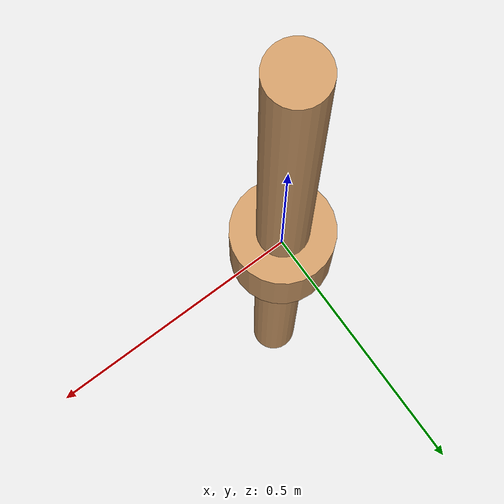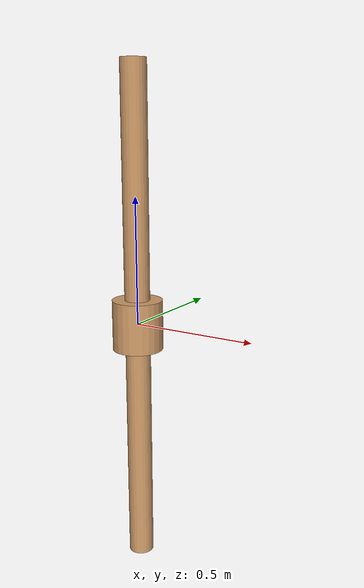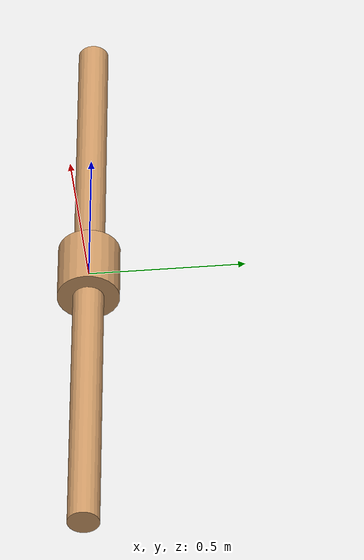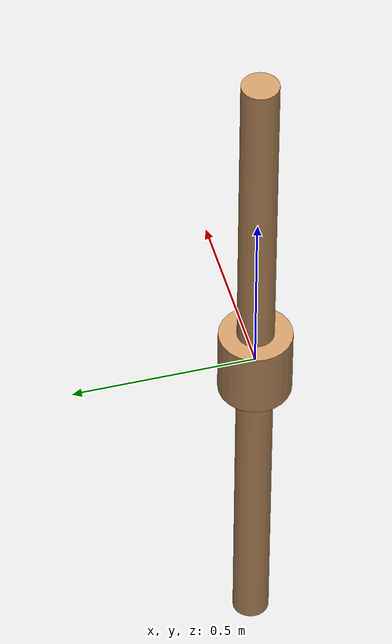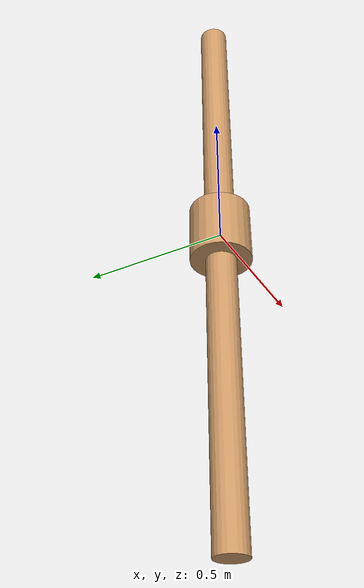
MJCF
<mujoco model="double_pendulum">
    <compiler angle="radian" coordinate="global" inertiafromgeom="true"/>
    <option timestep="0.01" gravity="[0 0 -9.81]"/>
    <worldbody>
        <body name="base" pos="0 0 0">
            <joint name="joint1" type="hinge" axis="0 0 1"/>
            <geom name="base_geom" type="cylinder" pos="0 0 0" size=".1 .1 .05" rgba=".8 .6 .4 1"/>
            <body name="link1" pos="0.5 0 0">
                <joint name="joint2" type="hinge" axis="0 0 1"/>
                <geom name="link1_geom" type="cylinder" pos="0 0 0" size=".05 1 .05" rgba=".8 .6 .4 1" mass="1"/>
                <body name="link2" pos="0.5 0 0">
                    <geom name="link2_geom" type="cylinder" pos="0 0 0" size=".05 1 .05" rgba=".8 .6 .4 1" mass="1"/>
                </body>
            </body>
        </body>
    </worldbody>
    <actuator>
        <motor joint="joint1" ctrlrange="-1.0 1.0" ctrllimited="true"/>
        <motor joint="joint2" ctrlrange="-1.0 1.0" ctrllimited="true"/>
    </actuator>
</mujoco>
